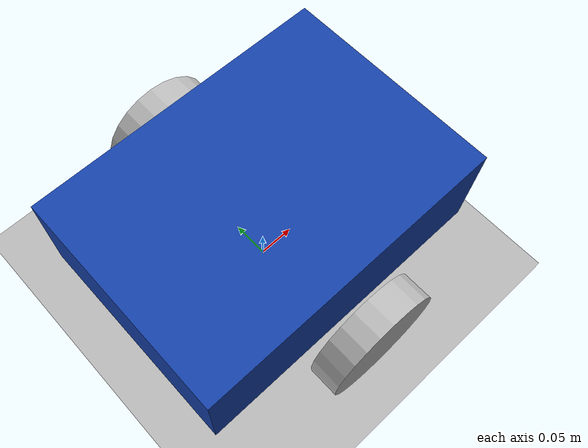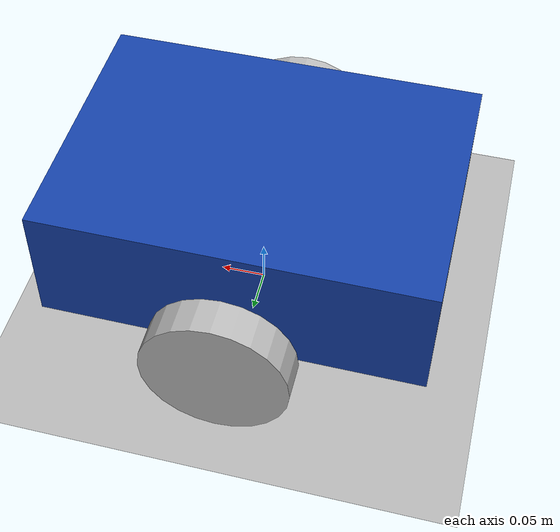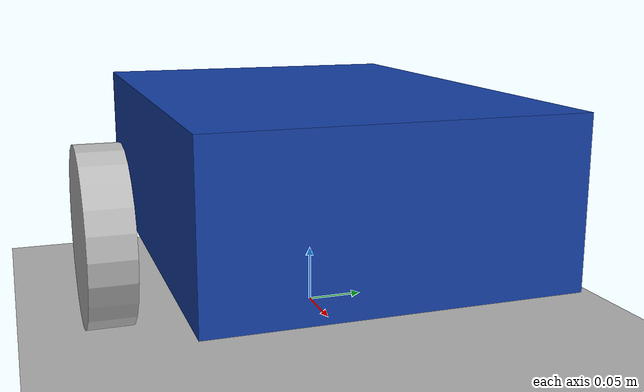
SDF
<?xml version="1.0"?>
<sdf version="1.9">
  <world name="pdr_world">
    <physics name="pdr_physics" type="ignored">
      <max_step_size>0.001</max_step_size>
      <real_time_factor>1.0</real_time_factor>
    </physics>
    <plugin filename="gz-sim-physics-system" name="gz::sim::systems::Physics"/>
    <plugin filename="gz-sim-user-commands-system" name="gz::sim::systems::UserCommands"/>
    <plugin filename="gz-sim-scene-broadcaster-system" name="gz::sim::systems::SceneBroadcaster"/>
    <light type="directional" name="sun">
      <cast_shadows>true</cast_shadows>
      <pose>0 0 10 0 0 0</pose>
      <diffuse>0.8 0.8 0.8 1</diffuse>
      <specular>0.2 0.2 0.2 1</specular>
      <direction>-0.5 0.1 -0.9</direction>
    </light>
    <model name="ground_plane">
      <static>true</static>
      <link name="ground_link">
        <collision name="collision">
          <geometry><plane><normal>0 0 1</normal><size>100 100</size></plane></geometry>
        </collision>
        <visual name="visual">
          <geometry><plane><normal>0 0 1</normal><size>100 100</size></plane></geometry>
          <material><ambient>0.7 0.7 0.7 1</ambient><diffuse>0.7 0.7 0.7 1</diffuse></material>
        </visual>
      </link>
    </model>
    <model name="pdr_bot">
      <pose>0 0 0.13 0 0 0</pose>
      <link name="base_link">
        <inertial><mass>8.0</mass><inertia><ixx>0.12</ixx><iyy>0.18</iyy><izz>0.22</izz></inertia></inertial>
        <collision name="base_collision">
          <geometry><box><size>0.42 0.30 0.14</size></box></geometry>
        </collision>
        <visual name="base_visual">
          <geometry><box><size>0.42 0.30 0.14</size></box></geometry>
          <material><ambient>0.08 0.25 0.65 1</ambient><diffuse>0.08 0.25 0.65 1</diffuse></material>
        </visual>
      </link>
      <link name="left_wheel">
        <pose relative_to="base_link">0 0.19 -0.05 1.570796 0 0</pose>
        <inertial><mass>0.5</mass><inertia><ixx>0.0016</ixx><iyy>0.0016</iyy><izz>0.0032</izz></inertia></inertial>
        <collision name="collision"><geometry><cylinder><radius>0.08</radius><length>0.04</length></cylinder></geometry></collision>
        <visual name="visual"><geometry><cylinder><radius>0.08</radius><length>0.04</length></cylinder></geometry></visual>
      </link>
      <link name="right_wheel">
        <pose relative_to="base_link">0 -0.19 -0.05 1.570796 0 0</pose>
        <inertial><mass>0.5</mass><inertia><ixx>0.0016</ixx><iyy>0.0016</iyy><izz>0.0032</izz></inertia></inertial>
        <collision name="collision"><geometry><cylinder><radius>0.08</radius><length>0.04</length></cylinder></geometry></collision>
        <visual name="visual"><geometry><cylinder><radius>0.08</radius><length>0.04</length></cylinder></geometry></visual>
      </link>
      <link name="caster">
        <pose relative_to="base_link">-0.15 0 -0.08 0 0 0</pose>
        <inertial><mass>0.1</mass><inertia><ixx>0.0001</ixx><iyy>0.0001</iyy><izz>0.0001</izz></inertia></inertial>
        <collision name="collision"><geometry><sphere><radius>0.035</radius></sphere></geometry></collision>
        <visual name="visual"><geometry><sphere><radius>0.035</radius></sphere></geometry></visual>
      </link>
      <joint name="left_wheel_joint" type="revolute">
        <parent>base_link</parent><child>left_wheel</child>
        <axis><xyz expressed_in="base_link">0 1 0</xyz></axis>
      </joint>
      <joint name="right_wheel_joint" type="revolute">
        <parent>base_link</parent><child>right_wheel</child>
        <axis><xyz expressed_in="base_link">0 1 0</xyz></axis>
      </joint>
      <joint name="caster_joint" type="ball"><parent>base_link</parent><child>caster</child></joint>
      <plugin filename="gz-sim-diff-drive-system" name="gz::sim::systems::DiffDrive">
        <left_joint>left_wheel_joint</left_joint>
        <right_joint>right_wheel_joint</right_joint>
        <wheel_separation>0.38</wheel_separation>
        <wheel_radius>0.08</wheel_radius>
        <topic>/model/pdr_bot/cmd_vel</topic>
        <odom_topic>/model/pdr_bot/odometry</odom_topic>
        <tf_topic>/model/pdr_bot/tf</tf_topic>
        <frame_id>odom</frame_id>
        <child_frame_id>base_link</child_frame_id>
      </plugin>
      <plugin filename="gz-sim-joint-state-publisher-system" name="gz::sim::systems::JointStatePublisher">
        <joint_name>left_wheel_joint</joint_name>
        <joint_name>right_wheel_joint</joint_name>
        <topic>/world/pdr_world/model/pdr_bot/joint_state</topic>
      </plugin>
    </model>
  </world>
</sdf>
